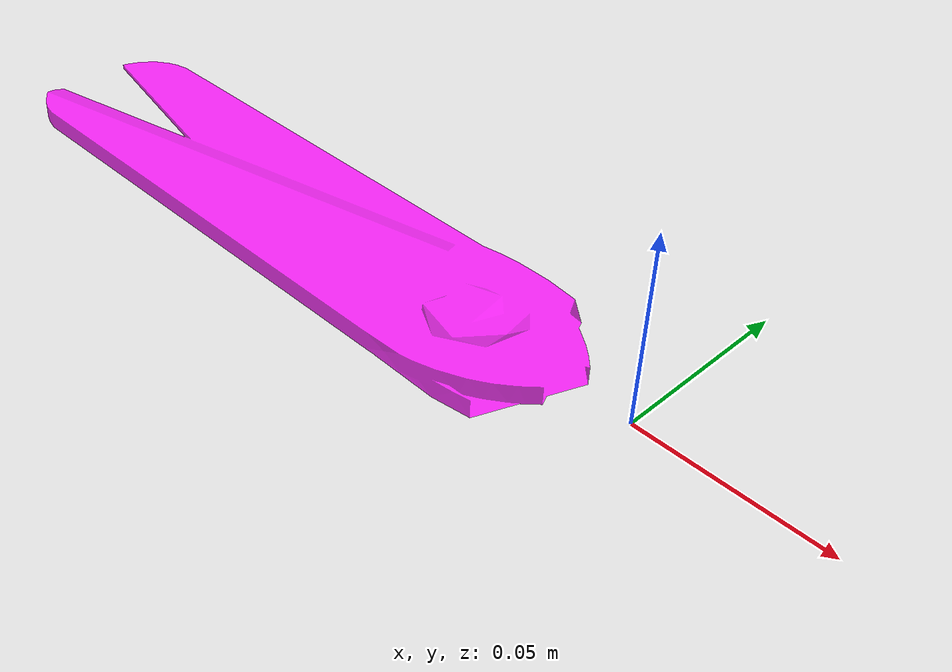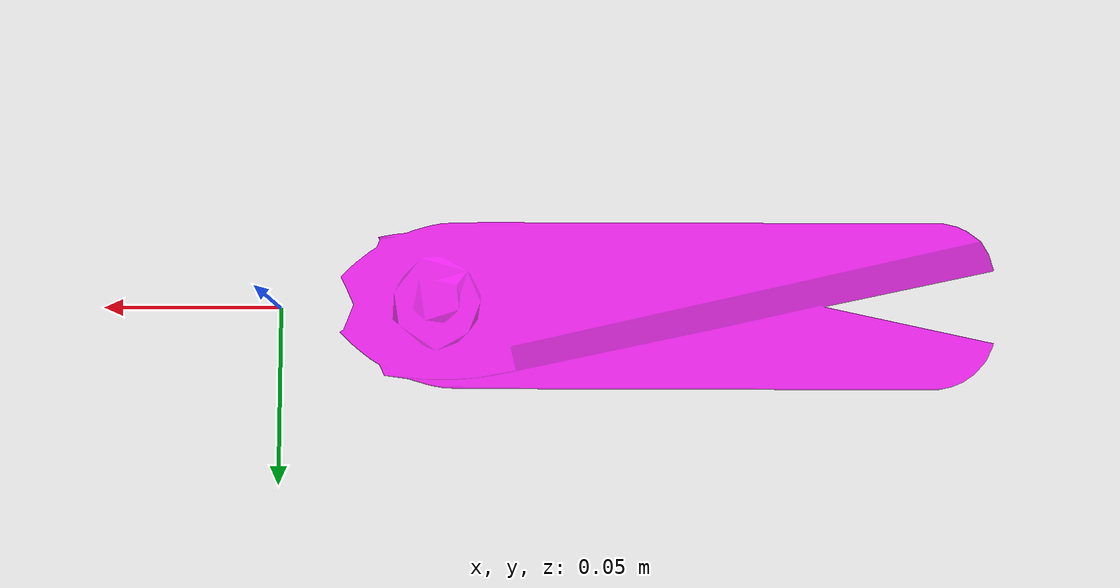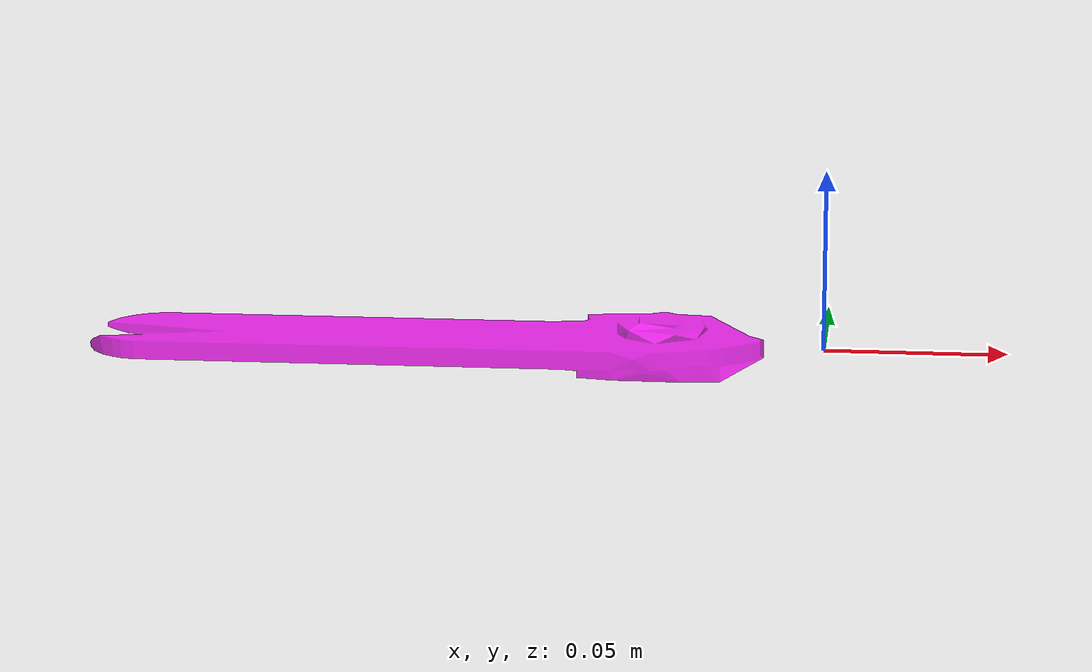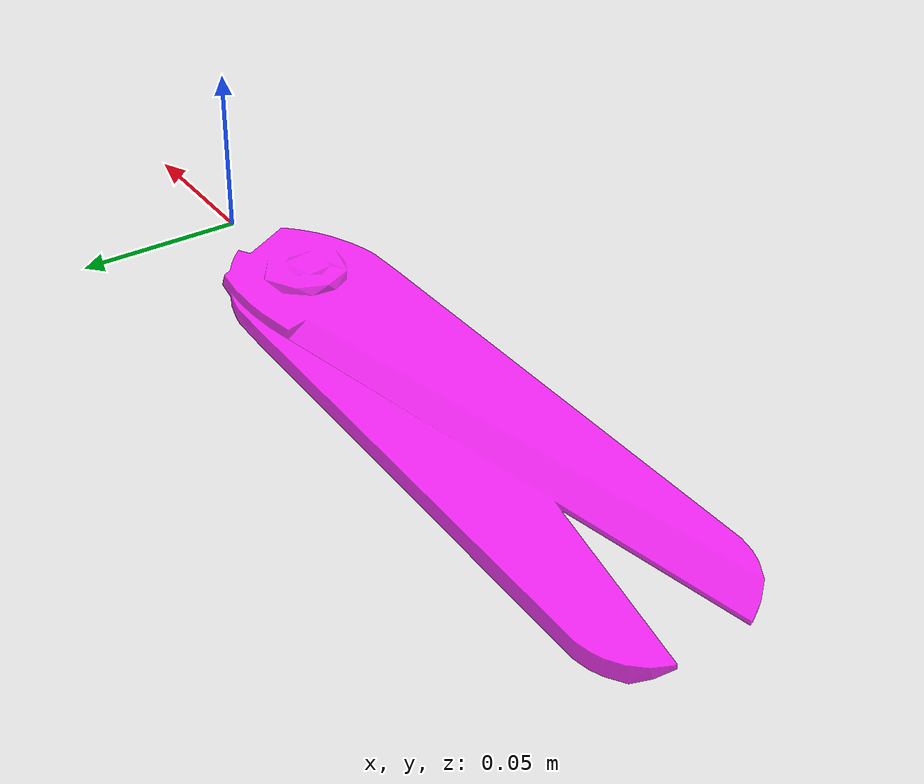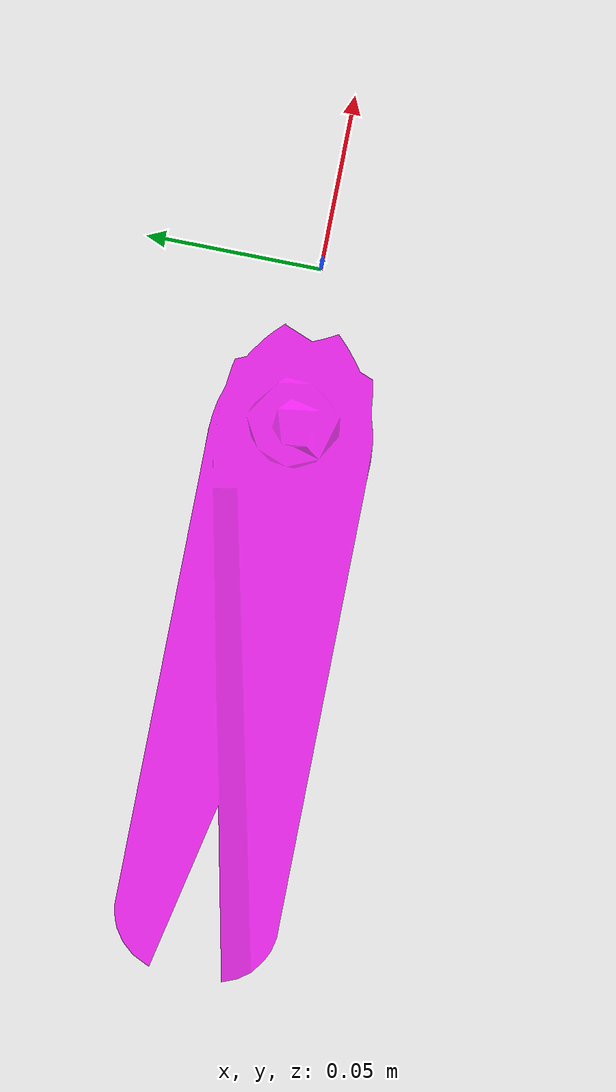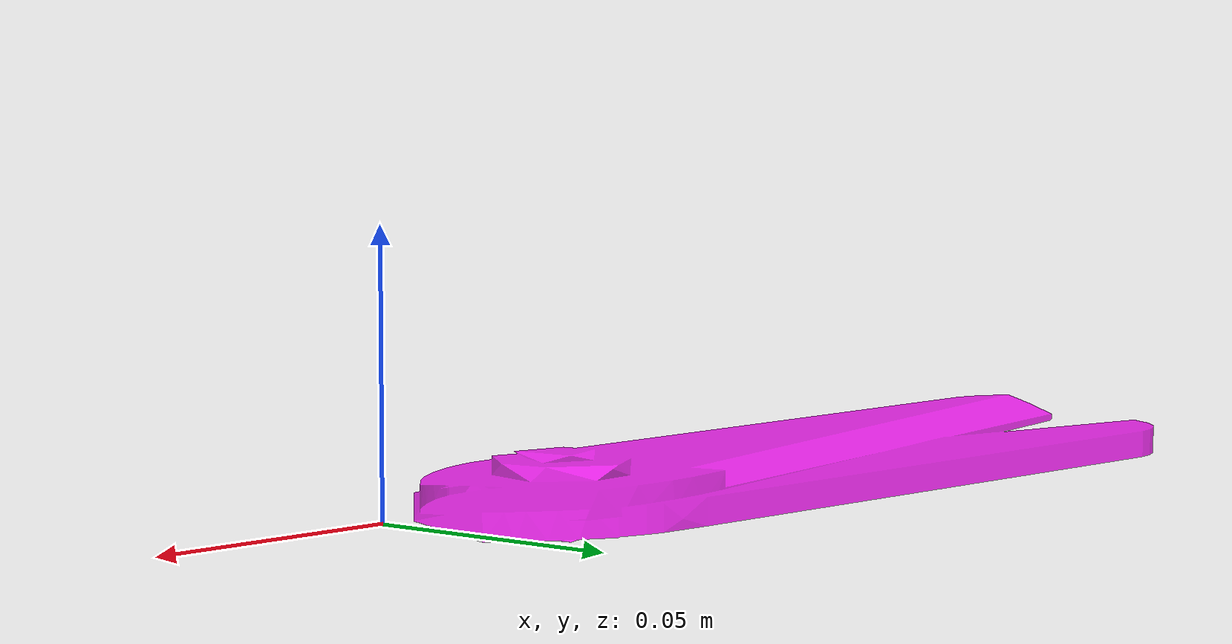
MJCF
<mujoco model="bottom_watertight_tiny">
  <default>
    <default group="2" type="mesh" contype="0" conaffinity="0">
      <geom group="2" type="mesh" contype="0" conaffinity="0"/>
    </default>
    <default group="3" type="mesh">
      <geom group="3" type="mesh"/>
    </default>
  </default>
  <asset>
    <mesh file="bottom_watertight_tiny.obj"/>
    <mesh file="bottom_watertight_tiny_collision_0.obj"/>
    <mesh file="bottom_watertight_tiny_collision_1.obj"/>
    <mesh file="bottom_watertight_tiny_collision_2.obj"/>
    <mesh file="bottom_watertight_tiny_collision_3.obj"/>
    <mesh file="bottom_watertight_tiny_collision_4.obj"/>
    <mesh file="bottom_watertight_tiny_collision_5.obj"/>
    <mesh file="bottom_watertight_tiny_collision_6.obj"/>
  </asset>
  <worldbody>
    <body name="bottom_watertight_tiny">
      <freejoint/>
      <geom mesh="bottom_watertight_tiny" group="2" type="mesh" rgba="1 0 1 0.8" contype="0" conaffinity="0"/>
      <geom mesh="bottom_watertight_tiny_collision_0" rgba="0.9879233995320389 0.16102971469493632 0.7461707969698452 1" group="3" type="mesh"/>
      <geom mesh="bottom_watertight_tiny_collision_1" rgba="0.06597117280423936 0.6113509218994253 0.9830902918167367 1" group="3" type="mesh"/>
      <geom mesh="bottom_watertight_tiny_collision_2" rgba="0.09138968266190184 0.18010842363565627 0.3442808974351388 1" group="3" type="mesh"/>
      <geom mesh="bottom_watertight_tiny_collision_3" rgba="0.6685137749599078 0.10681276398460071 0.969036983918545 1" group="3" type="mesh"/>
      <geom mesh="bottom_watertight_tiny_collision_4" rgba="0.7092459463000642 0.5326357503456379 0.8691400552962312 1" group="3" type="mesh"/>
      <geom mesh="bottom_watertight_tiny_collision_5" rgba="0.4504006411784033 0.7672259048855568 0.6495549087220401 1" group="3" type="mesh"/>
      <geom mesh="bottom_watertight_tiny_collision_6" rgba="0.9440346137089726 0.03689103613727995 0.29797799500642985 1" group="3" type="mesh"/>
    </body>
  </worldbody>
</mujoco>
